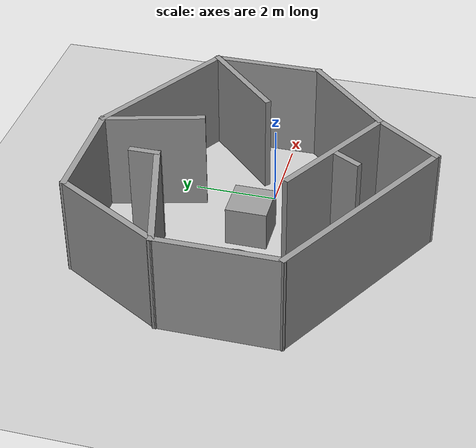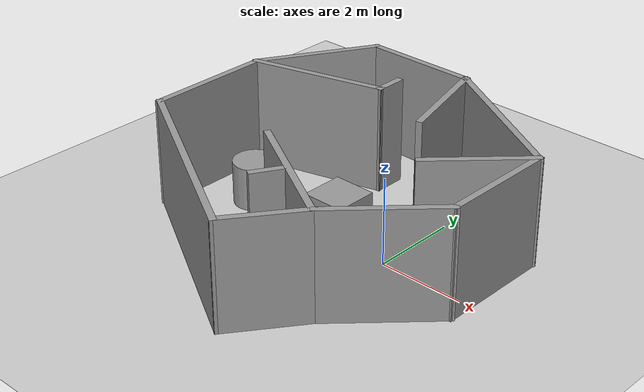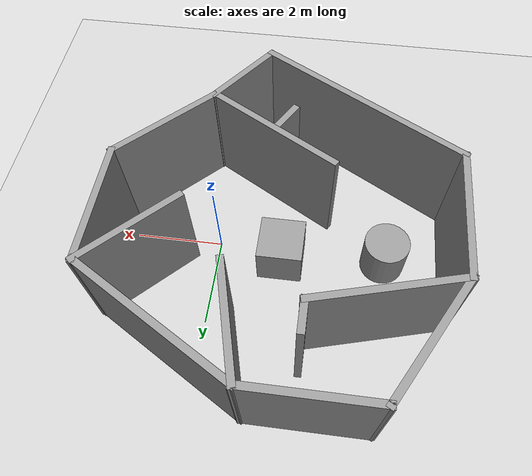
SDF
<sdf version="1.7">
 <world name="default">
  <light name="sun" type="directional">
   <pose>0 0 10 0 -0 0</pose>
   <diffuse>0.8 0.8 0.8 1</diffuse>
   <specular>0.2 0.2 0.2 1</specular>
   <attenuation>
    <range>1000</range>
    <constant>0.9</constant>
    <linear>0.01</linear>
    <quadratic>0.001</quadratic>
   </attenuation>
   <direction>-0.5 0.1 -0.9</direction>
   <spot><inner_angle>0</inner_angle><outer_angle>0</outer_angle><falloff>0</falloff></spot>
  </light>
  <model name="ground_plane">
   <static>1</static>
   <link name="link">
    <collision name="collision">
     <geometry><plane><normal>0 0 1</normal><size>100 100</size></plane></geometry>
     <surface><friction><ode><mu>100</mu><mu2>50</mu2></ode></friction></surface>
    </collision>
    <visual name="visual">
     <cast_shadows>0</cast_shadows>
     <geometry><plane><normal>0 0 1</normal><size>100 100</size></plane></geometry>
     <material>
      <script><uri>file://media/materials/scripts/gazebo.material</uri><name>Gazebo/Grey</name></script>
     </material>
    </visual>
   </link>
  </model>
  <gravity>0 0 -9.8</gravity>
  <magnetic_field>6e-06 2.3e-05 -4.2e-05</magnetic_field>
  <atmosphere type="adiabatic"/>
  <physics type="ode">
   <max_step_size>0.001</max_step_size>
   <real_time_factor>1</real_time_factor>
   <real_time_update_rate>1000</real_time_update_rate>
  </physics>
  <scene><ambient>0.4 0.4 0.4 1</ambient><background>0.7 0.7 0.7 1</background><shadows>1</shadows></scene>
  <audio><device>default</device></audio>
  <spherical_coordinates>
   <surface_model>EARTH_WGS84</surface_model>
   <latitude_deg>0</latitude_deg>
   <longitude_deg>0</longitude_deg>
   <elevation>0</elevation>
   <heading_deg>0</heading_deg>
  </spherical_coordinates>
  <model name="smallest_custom_world">
   <pose>-1.4547 0.013149 0 0 -0 0</pose>
   <link name="Wall_1">
    <collision name="Wall_1_Collision">
     <geometry><box><size>3.25 0.15 2.5</size></box></geometry>
     <pose>0 0 1.25 0 -0 0</pose>
    </collision>
    <visual name="Wall_1_Visual">
     <pose>0 0 1.25 0 -0 0</pose>
     <geometry><box><size>3.25 0.15 2.5</size></box></geometry>
     <material>
      <script><uri>file://media/materials/scripts/gazebo.material</uri><name>Gazebo/Grey</name></script>
      <ambient>1 1 1 1</ambient>
     </material>
     <meta><layer>0</layer></meta>
    </visual>
    <pose>0.364028 -1.61815 0 0 -0 -0.523599</pose>
   </link>
   <link name="Wall_10">
    <collision name="Wall_10_Collision">
     <geometry><box><size>3 0.15 2.5</size></box></geometry>
     <pose>0 0 1.25 0 -0 0</pose>
    </collision>
    <visual name="Wall_10_Visual">
     <pose>0 0 1.25 0 -0 0</pose>
     <geometry><box><size>3 0.15 2.5</size></box></geometry>
     <material>
      <script><uri>file://media/materials/scripts/gazebo.material</uri><name>Gazebo/Grey</name></script>
      <ambient>1 1 1 1</ambient>
     </material>
     <meta><layer>0</layer></meta>
    </visual>
    <pose>-3.68141 0.042106 0 0 -0 -1.5708</pose>
   </link>
   <link name="Wall_11">
    <collision name="Wall_11_Collision">
     <geometry><box><size>5.25 0.15 2.5</size></box></geometry>
     <pose>0 0 1.25 0 -0 0</pose>
    </collision>
    <visual name="Wall_11_Visual">
     <pose>0 0 1.25 0 -0 0</pose>
     <geometry><box><size>5.25 0.15 2.5</size></box></geometry>
     <material>
      <script><uri>file://media/materials/scripts/gazebo.material</uri><name>Gazebo/Grey</name></script>
      <ambient>1 1 1 1</ambient>
     </material>
     <meta><layer>0</layer></meta>
    </visual>
    <pose>-1.47304 -2.65789 0 0 -0 -0.523599</pose>
   </link>
   <link name="Wall_12">
    <collision name="Wall_12_Collision">
     <geometry><box><size>2.01625 0.15 2.5</size></box></geometry>
     <pose>0 0 1.25 0 -0 0</pose>
    </collision>
    <visual name="Wall_12_Visual">
     <pose>0 0 1.25 0 -0 0</pose>
     <geometry><box><size>2.01625 0.15 2.5</size></box></geometry>
     <material>
      <script><uri>file://media/materials/scripts/gazebo.material</uri><name>Gazebo/Grey</name></script>
      <ambient>1 1 1 1</ambient>
     </material>
     <meta><layer>0</layer></meta>
    </visual>
    <pose>1.28732 -3.18055 0 0 -0 0.937811</pose>
   </link>
   <link name="Wall_14">
    <collision name="Wall_14_Collision">
     <geometry><box><size>0.75 0.15 2.5</size></box></geometry>
     <pose>0 0 1.25 0 -0 0</pose>
    </collision>
    <visual name="Wall_14_Visual">
     <pose>0 0 1.25 0 -0 0</pose>
     <geometry><box><size>0.75 0.15 2.5</size></box></geometry>
     <material>
      <script><uri>file://media/materials/scripts/gazebo.material</uri><name>Gazebo/Grey</name></script>
      <ambient>1 1 1 1</ambient>
     </material>
     <meta><layer>0</layer></meta>
    </visual>
    <pose>0.141174 -1.98069 0 0 -0 1.0472</pose>
   </link>
   <link name="Wall_16">
    <collision name="Wall_16_Collision">
     <geometry><box><size>3.25 0.15 2.5</size></box></geometry>
     <pose>0 0 1.25 0 -0 0</pose>
    </collision>
    <visual name="Wall_16_Visual">
     <pose>0 0 1.25 0 -0 0</pose>
     <geometry><box><size>3.25 0.15 2.5</size></box></geometry>
     <material>
      <script><uri>file://media/materials/scripts/gazebo.material</uri><name>Gazebo/Grey</name></script>
      <ambient>1 1 1 1</ambient>
     </material>
     <meta><layer>0</layer></meta>
    </visual>
    <pose>-2.18422 1.86828 0 0 -0 0.261799</pose>
   </link>
   <link name="Wall_17">
    <collision name="Wall_17_Collision">
     <geometry><box><size>0.75 0.15 2.5</size></box></geometry>
     <pose>0 0 1.25 0 -0 0</pose>
    </collision>
    <visual name="Wall_17_Visual">
     <pose>0 0 1.25 0 -0 0</pose>
     <geometry><box><size>0.75 0.15 2.5</size></box></geometry>
     <material>
      <script><uri>file://media/materials/scripts/gazebo.material</uri><name>Gazebo/Grey</name></script>
      <ambient>1 1 1 1</ambient>
     </material>
     <meta><layer>0</layer></meta>
    </visual>
    <pose>-0.687036 2.56944 0 0 -0 1.5708</pose>
   </link>
   <link name="Wall_19">
    <collision name="Wall_19_Collision">
     <geometry><box><size>2.5 0.15 2.5</size></box></geometry>
     <pose>0 0 1.25 0 -0 0</pose>
    </collision>
    <visual name="Wall_19_Visual">
     <pose>0 0 1.25 0 -0 0</pose>
     <geometry><box><size>2.5 0.15 2.5</size></box></geometry>
     <material>
      <script><uri>file://media/materials/scripts/gazebo.material</uri><name>Gazebo/Grey</name></script>
      <ambient>1 1 1 1</ambient>
     </material>
     <meta><layer>0</layer></meta>
    </visual>
    <pose>2.84694 1.17943 0 0 -0 -2.35619</pose>
   </link>
   <link name="Wall_21">
    <collision name="Wall_21_Collision">
     <geometry><box><size>2.5 0.15 2.5</size></box></geometry>
     <pose>0 0 1.25 0 -0 0</pose>
    </collision>
    <visual name="Wall_21_Visual">
     <pose>0 0 1.25 0 -0 0</pose>
     <geometry><box><size>2.5 0.15 2.5</size></box></geometry>
     <material>
      <script><uri>file://media/materials/scripts/gazebo.material</uri><name>Gazebo/Grey</name></script>
      <ambient>1 1 1 1</ambient>
     </material>
     <meta><layer>0</layer></meta>
    </visual>
    <pose>0.647706 2.80032 0 0 -0 -1.309</pose>
   </link>
   <link name="Wall_3">
    <collision name="Wall_3_Collision">
     <geometry><box><size>2.75 0.15 2.5</size></box></geometry>
     <pose>0 0 1.25 0 -0 0</pose>
    </collision>
    <visual name="Wall_3_Visual">
     <pose>0 0 1.25 0 -0 0</pose>
     <geometry><box><size>2.75 0.15 2.5</size></box></geometry>
     <material>
      <script><uri>file://media/materials/scripts/gazebo.material</uri><name>Gazebo/Grey</name></script>
      <ambient>1 1 1 1</ambient>
     </material>
     <meta><layer>0</layer></meta>
    </visual>
    <pose>2.75855 -1.50896 0 0 -0 0.785398</pose>
   </link>
   <link name="Wall_6">
    <collision name="Wall_6_Collision">
     <geometry><box><size>2.75 0.15 2.5</size></box></geometry>
     <pose>0 0 1.25 0 -0 0</pose>
    </collision>
    <visual name="Wall_6_Visual">
     <pose>0 0 1.25 0 -0 0</pose>
     <geometry><box><size>2.75 0.15 2.5</size></box></geometry>
     <material>
      <script><uri>file://media/materials/scripts/gazebo.material</uri><name>Gazebo/Grey</name></script>
      <ambient>1 1 1 1</ambient>
     </material>
     <meta><layer>0</layer></meta>
    </visual>
    <pose>3.67779 0.710279 0 0 -0 1.5708</pose>
   </link>
   <link name="Wall_7">
    <collision name="Wall_7_Collision">
     <geometry><box><size>4 0.15 2.5</size></box></geometry>
     <pose>0 0 1.25 0 -0 0</pose>
    </collision>
    <visual name="Wall_7_Visual">
     <pose>0 0 1.25 0 -0 0</pose>
     <geometry><box><size>4 0.15 2.5</size></box></geometry>
     <material>
      <script><uri>file://media/materials/scripts/gazebo.material</uri><name>Gazebo/Grey</name></script>
      <ambient>1 1 1 1</ambient>
     </material>
     <meta><layer>0</layer></meta>
    </visual>
    <pose>2.01069 2.97278 0 0 -0 2.61799</pose>
   </link>
   <link name="Wall_8">
    <collision name="Wall_8_Collision">
     <geometry><box><size>2.75 0.15 2.5</size></box></geometry>
     <pose>0 0 1.25 0 -0 0</pose>
    </collision>
    <visual name="Wall_8_Visual">
     <pose>0 0 1.25 0 -0 0</pose>
     <geometry><box><size>2.75 0.15 2.5</size></box></geometry>
     <material>
      <script><uri>file://media/materials/scripts/gazebo.material</uri><name>Gazebo/Grey</name></script>
      <ambient>1 1 1 1</ambient>
     </material>
     <meta><layer>0</layer></meta>
    </visual>
    <pose>-0.956406 3.93528 0 0 -0 3.14159</pose>
   </link>
   <link name="Wall_9">
    <collision name="Wall_9_Collision">
     <geometry><box><size>3 0.15 2.5</size></box></geometry>
     <pose>0 0 1.25 0 -0 0</pose>
    </collision>
    <visual name="Wall_9_Visual">
     <pose>0 0 1.25 0 -0 0</pose>
     <geometry><box><size>3 0.15 2.5</size></box></geometry>
     <material>
      <script><uri>file://media/materials/scripts/gazebo.material</uri><name>Gazebo/Grey</name></script>
      <ambient>1 1 1 1</ambient>
     </material>
     <meta><layer>0</layer></meta>
    </visual>
    <pose>-2.96891 2.70119 0 0 -0 -2.0944</pose>
   </link>
   <static>1</static>
  </model>
  <model name="unit_cylinder">
   <pose>-3.78915 0.067353 0.499998 3e-06 -4e-06 0</pose>
   <link name="link">
    <inertial>
     <mass>1</mass>
     <inertia><ixx>0.145833</ixx><ixy>0</ixy><ixz>0</ixz><iyy>0.145833</iyy><iyz>0</iyz><izz>0.125</izz></inertia>
    </inertial>
    <collision name="collision">
     <geometry><cylinder><radius>0.5</radius><length>1</length></cylinder></geometry>
    </collision>
    <visual name="visual">
     <geometry><cylinder><radius>0.5</radius><length>1</length></cylinder></geometry>
     <material>
      <script><name>Gazebo/Grey</name><uri>file://media/materials/scripts/gazebo.material</uri></script>
     </material>
    </visual>
   </link>
  </model>
  <model name="unit_box">
   <pose>-1.46354 0.246207 0.5 0 -0 0</pose>
   <link name="link">
    <inertial>
     <mass>1</mass>
     <inertia>
      <ixx>0.166667</ixx>
      <ixy>0</ixy>
      <ixz>0</ixz>
      <iyy>0.166667</iyy>
      <iyz>0</iyz>
      <izz>0.166667</izz>
     </inertia>
    </inertial>
    <collision name="collision"><geometry><box><size>1 1 1</size></box></geometry></collision>
    <visual name="visual">
     <geometry><box><size>1 1 1</size></box></geometry>
     <material>
      <script><name>Gazebo/Grey</name><uri>file://media/materials/scripts/gazebo.material</uri></script>
     </material>
    </visual>
   </link>
  </model>
 </world>
</sdf>
